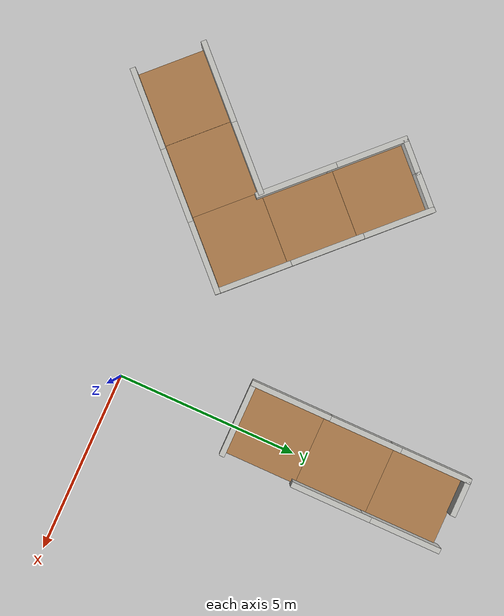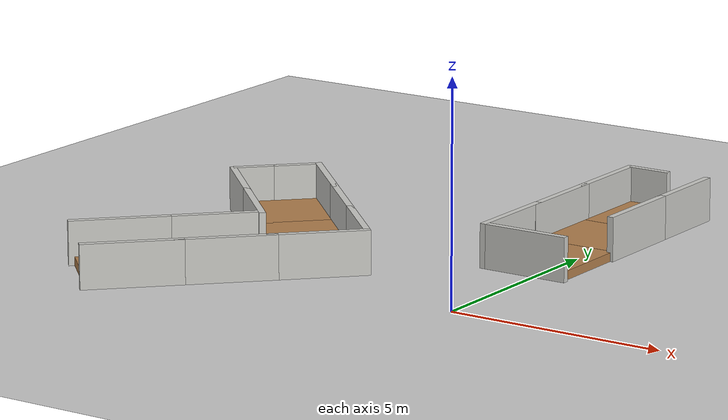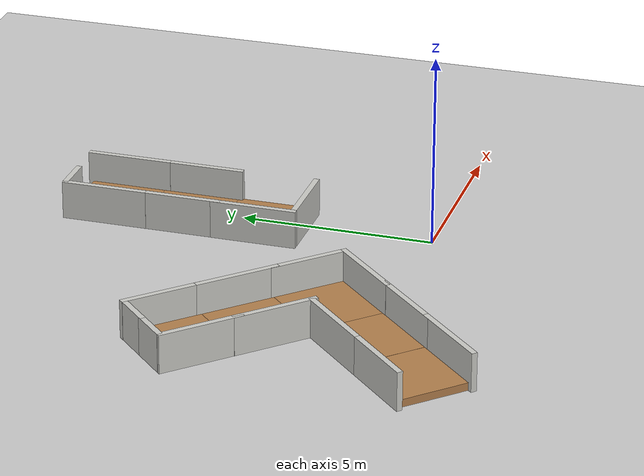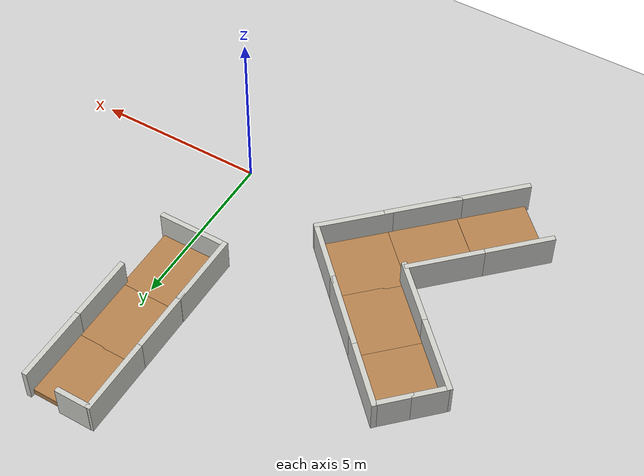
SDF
<sdf version="1.6">
 <world name="default">
  <model name="ground_plane">
   <static>1</static>
   <link name="link">
    <collision name="collision">
     <geometry><plane><normal>0 0 1</normal><size>100 100</size></plane></geometry>
     <surface><friction><ode><mu>100</mu><mu2>50</mu2></ode></friction></surface>
    </collision>
    <visual name="visual">
     <cast_shadows>0</cast_shadows>
     <geometry><plane><normal>0 0 1</normal><size>100 100</size></plane></geometry>
     <material>
      <script><uri>file://media/materials/scripts/gazebo.material</uri><name>Gazebo/Grey</name></script>
     </material>
    </visual>
   </link>
  </model>
  <model name="pg_maze_straight_5">
   <pose>-7.36012 -1.48286 0 0 -0 0.785398</pose>
   <link name="Wall_0">
    <collision name="Wall_0_Collision">
     <geometry><box><size>2.01 2 0.2</size></box></geometry>
     <pose>0 0 0.1 0 -0 0</pose>
    </collision>
    <visual name="Wall_0_Visual">
     <pose>0 0 0.1 0 -0 0</pose>
     <geometry><box><size>2.01 2 0.2</size></box></geometry>
     <material>
      <script><uri>file://media/materials/scripts/gazebo.material</uri><name>Gazebo/Wood</name></script>
      <ambient>1 1 1 1</ambient>
     </material>
     <meta><layer>0</layer></meta>
    </visual>
    <pose>0.003 -0.001 0 0 -0 0</pose>
   </link>
   <link name="Wall_2">
    <collision name="Wall_2_Collision">
     <geometry><box><size>2.25 0.15 1</size></box></geometry>
     <pose>0 0 0.5 0 -0 0</pose>
    </collision>
    <visual name="Wall_2_Visual">
     <pose>0 0 0.5 0 -0 0</pose>
     <geometry><box><size>2.25 0.15 1</size></box></geometry>
     <material>
      <script><uri>file://media/materials/scripts/gazebo.material</uri><name>Gazebo/CeilingTiled</name></script>
      <ambient>0.996078 0.47451 0.0196078 1</ambient>
     </material>
     <meta><layer>0</layer></meta>
    </visual>
    <pose>-0.005 0.985 0 0 -0 0</pose>
   </link>
   <link name="Wall_4">
    <collision name="Wall_4_Collision">
     <geometry><box><size>2.25 0.15 1</size></box></geometry>
     <pose>0 0 0.5 0 -0 0</pose>
    </collision>
    <visual name="Wall_4_Visual">
     <pose>0 0 0.5 0 -0 0</pose>
     <geometry><box><size>2.25 0.15 1</size></box></geometry>
     <material>
      <script><uri>file://media/materials/scripts/gazebo.material</uri><name>Gazebo/CeilingTiled</name></script>
      <ambient>0.996078 0.47451 0.0196078 1</ambient>
     </material>
     <meta><layer>0</layer></meta>
    </visual>
    <pose>0.005 -0.985 0 0 -0 0</pose>
   </link>
   <static>1</static>
  </model>
  <model name="pg_maze_straight_5_clone">
   <pose>-5.93722 -0.059853 0 0 -0 0.785398</pose>
   <link name="Wall_0">
    <collision name="Wall_0_Collision">
     <geometry><box><size>2.01 2 0.2</size></box></geometry>
     <pose>0 0 0.1 0 -0 0</pose>
    </collision>
    <visual name="Wall_0_Visual">
     <pose>0 0 0.1 0 -0 0</pose>
     <geometry><box><size>2.01 2 0.2</size></box></geometry>
     <material>
      <script><uri>file://media/materials/scripts/gazebo.material</uri><name>Gazebo/Wood</name></script>
      <ambient>1 1 1 1</ambient>
     </material>
     <meta><layer>0</layer></meta>
    </visual>
    <pose>0.003 -0.001 0 0 -0 0</pose>
   </link>
   <link name="Wall_2">
    <collision name="Wall_2_Collision">
     <geometry><box><size>2.25 0.15 1</size></box></geometry>
     <pose>0 0 0.5 0 -0 0</pose>
    </collision>
    <visual name="Wall_2_Visual">
     <pose>0 0 0.5 0 -0 0</pose>
     <geometry><box><size>2.25 0.15 1</size></box></geometry>
     <material>
      <script><uri>file://media/materials/scripts/gazebo.material</uri><name>Gazebo/CeilingTiled</name></script>
      <ambient>0.996078 0.47451 0.0196078 1</ambient>
     </material>
     <meta><layer>0</layer></meta>
    </visual>
    <pose>-0.005 0.985 0 0 -0 0</pose>
   </link>
   <link name="Wall_4">
    <collision name="Wall_4_Collision">
     <geometry><box><size>2.25 0.15 1</size></box></geometry>
     <pose>0 0 0.5 0 -0 0</pose>
    </collision>
    <visual name="Wall_4_Visual">
     <pose>0 0 0.5 0 -0 0</pose>
     <geometry><box><size>2.25 0.15 1</size></box></geometry>
     <material>
      <script><uri>file://media/materials/scripts/gazebo.material</uri><name>Gazebo/CeilingTiled</name></script>
      <ambient>0.996078 0.47451 0.0196078 1</ambient>
     </material>
     <meta><layer>0</layer></meta>
    </visual>
    <pose>0.005 -0.985 0 0 -0 0</pose>
   </link>
   <static>1</static>
  </model>
  <model name="pg_maze_corner_0_clone_1">
   <pose>-4.52453 1.36756 0 0 0 -2.35619</pose>
   <link name="Wall_0">
    <collision name="Wall_0_Collision">
     <geometry><box><size>2.01 2 0.2</size></box></geometry>
     <pose>0 0 0.1 0 -0 0</pose>
    </collision>
    <visual name="Wall_0_Visual">
     <pose>0 0 0.1 0 -0 0</pose>
     <geometry><box><size>2.01 2 0.2</size></box></geometry>
     <material>
      <script><uri>file://media/materials/scripts/gazebo.material</uri><name>Gazebo/Wood</name></script>
      <ambient>1 1 1 1</ambient>
     </material>
     <meta><layer>0</layer></meta>
    </visual>
    <pose>0.009575 0.005575 0 0 -0 0</pose>
   </link>
   <link name="Wall_2">
    <collision name="Wall_2_Collision">
     <geometry><box><size>2.25 0.15 1</size></box></geometry>
     <pose>0 0 0.5 0 -0 0</pose>
    </collision>
    <visual name="Wall_2_Visual">
     <pose>0 0 0.5 0 -0 0</pose>
     <geometry><box><size>2.25 0.15 1</size></box></geometry>
     <material>
      <script><uri>file://media/materials/scripts/gazebo.material</uri><name>Gazebo/CeilingTiled</name></script>
      <ambient>0.996078 0.47451 0.0196078 1</ambient>
     </material>
     <meta><layer>0</layer></meta>
    </visual>
    <pose>0.001575 0.991575 0 0 -0 0</pose>
   </link>
   <link name="Wall_4">
    <collision name="Wall_4_Collision">
     <geometry><box><size>2 0.15 1</size></box></geometry>
     <pose>0 0 0.5 0 -0 0</pose>
    </collision>
    <visual name="Wall_4_Visual">
     <pose>0 0 0.5 0 -0 0</pose>
     <geometry><box><size>2 0.15 1</size></box></geometry>
     <material>
      <script><uri>file://media/materials/scripts/gazebo.material</uri><name>Gazebo/CeilingTiled</name></script>
      <ambient>0.996078 0.47451 0.0196078 1</ambient>
     </material>
     <meta><layer>0</layer></meta>
    </visual>
    <pose>-1.05157 -0.066575 0 0 -0 1.5708</pose>
   </link>
   <static>1</static>
  </model>
  <model name="pg_maze_straight_5_clone_clone">
   <pose>-5.85769 2.79565 0 0 0 -0.785398</pose>
   <link name="Wall_0">
    <collision name="Wall_0_Collision">
     <geometry><box><size>2.01 2 0.2</size></box></geometry>
     <pose>0 0 0.1 0 -0 0</pose>
    </collision>
    <visual name="Wall_0_Visual">
     <pose>0 0 0.1 0 -0 0</pose>
     <geometry><box><size>2.01 2 0.2</size></box></geometry>
     <material>
      <script><uri>file://media/materials/scripts/gazebo.material</uri><name>Gazebo/Wood</name></script>
      <ambient>1 1 1 1</ambient>
     </material>
     <meta><layer>0</layer></meta>
    </visual>
    <pose>0.003 -0.001 0 0 -0 0</pose>
   </link>
   <link name="Wall_2">
    <collision name="Wall_2_Collision">
     <geometry><box><size>2.25 0.15 1</size></box></geometry>
     <pose>0 0 0.5 0 -0 0</pose>
    </collision>
    <visual name="Wall_2_Visual">
     <pose>0 0 0.5 0 -0 0</pose>
     <geometry><box><size>2.25 0.15 1</size></box></geometry>
     <material>
      <script><uri>file://media/materials/scripts/gazebo.material</uri><name>Gazebo/CeilingTiled</name></script>
      <ambient>0.996078 0.47451 0.0196078 1</ambient>
     </material>
     <meta><layer>0</layer></meta>
    </visual>
    <pose>-0.005 0.985 0 0 -0 0</pose>
   </link>
   <link name="Wall_4">
    <collision name="Wall_4_Collision">
     <geometry><box><size>2.25 0.15 1</size></box></geometry>
     <pose>0 0 0.5 0 -0 0</pose>
    </collision>
    <visual name="Wall_4_Visual">
     <pose>0 0 0.5 0 -0 0</pose>
     <geometry><box><size>2.25 0.15 1</size></box></geometry>
     <material>
      <script><uri>file://media/materials/scripts/gazebo.material</uri><name>Gazebo/CeilingTiled</name></script>
      <ambient>0.996078 0.47451 0.0196078 1</ambient>
     </material>
     <meta><layer>0</layer></meta>
    </visual>
    <pose>0.005 -0.985 0 0 -0 0</pose>
   </link>
   <static>1</static>
  </model>
  <model name="pg_maze_straight_5_clone_clone_clone">
   <pose>-7.2449 4.18662 0 0 0 -0.785398</pose>
   <link name="Wall_0">
    <collision name="Wall_0_Collision">
     <geometry><box><size>2.01 2 0.2</size></box></geometry>
     <pose>0 0 0.1 0 -0 0</pose>
    </collision>
    <visual name="Wall_0_Visual">
     <pose>0 0 0.1 0 -0 0</pose>
     <geometry><box><size>2.01 2 0.2</size></box></geometry>
     <material>
      <script><uri>file://media/materials/scripts/gazebo.material</uri><name>Gazebo/Wood</name></script>
      <ambient>1 1 1 1</ambient>
     </material>
     <meta><layer>0</layer></meta>
    </visual>
    <pose>0.003 -0.001 0 0 -0 0</pose>
   </link>
   <link name="Wall_2">
    <collision name="Wall_2_Collision">
     <geometry><box><size>2.25 0.15 1</size></box></geometry>
     <pose>0 0 0.5 0 -0 0</pose>
    </collision>
    <visual name="Wall_2_Visual">
     <pose>0 0 0.5 0 -0 0</pose>
     <geometry><box><size>2.25 0.15 1</size></box></geometry>
     <material>
      <script><uri>file://media/materials/scripts/gazebo.material</uri><name>Gazebo/CeilingTiled</name></script>
      <ambient>0.996078 0.47451 0.0196078 1</ambient>
     </material>
     <meta><layer>0</layer></meta>
    </visual>
    <pose>-0.005 0.985 0 0 -0 0</pose>
   </link>
   <link name="Wall_4">
    <collision name="Wall_4_Collision">
     <geometry><box><size>2.25 0.15 1</size></box></geometry>
     <pose>0 0 0.5 0 -0 0</pose>
    </collision>
    <visual name="Wall_4_Visual">
     <pose>0 0 0.5 0 -0 0</pose>
     <geometry><box><size>2.25 0.15 1</size></box></geometry>
     <material>
      <script><uri>file://media/materials/scripts/gazebo.material</uri><name>Gazebo/CeilingTiled</name></script>
      <ambient>0.996078 0.47451 0.0196078 1</ambient>
     </material>
     <meta><layer>0</layer></meta>
    </visual>
    <pose>0.005 -0.985 0 0 -0 0</pose>
   </link>
   <static>1</static>
  </model>
  <model name="pg_maze_obstacle_3">
   <pose>-7.67939 5.23676 0 0 -0 0.785398</pose>
   <link name="Wall_2">
    <collision name="Wall_2_Collision">
     <geometry><box><size>1 0.15 1</size></box></geometry>
     <pose>0 0 0.5 0 -0 0</pose>
    </collision>
    <visual name="Wall_2_Visual">
     <pose>0 0 0.5 0 -0 0</pose>
     <geometry><box><size>1 0.15 1</size></box></geometry>
     <material>
      <script><uri>file://media/materials/scripts/gazebo.material</uri><name>Gazebo/CeilingTiled</name></script>
      <ambient>0.996078 0.47451 0.0196078 1</ambient>
     </material>
     <meta><layer>0</layer></meta>
    </visual>
   </link>
   <static>1</static>
  </model>
  <model name="pg_maze_obstacle_3_clone">
   <pose>-8.32557 4.59098 0 0 -0 0.785398</pose>
   <link name="Wall_2">
    <collision name="Wall_2_Collision">
     <geometry><box><size>1 0.15 1</size></box></geometry>
     <pose>0 0 0.5 0 -0 0</pose>
    </collision>
    <visual name="Wall_2_Visual">
     <pose>0 0 0.5 0 -0 0</pose>
     <geometry><box><size>1 0.15 1</size></box></geometry>
     <material>
      <script><uri>file://media/materials/scripts/gazebo.material</uri><name>Gazebo/CeilingTiled</name></script>
      <ambient>0.996078 0.47451 0.0196078 1</ambient>
     </material>
     <meta><layer>0</layer></meta>
    </visual>
   </link>
   <static>1</static>
  </model>
  <model name="pg_maze_corner_0_clone_1_clone">
   <pose>-0.301148 4.32906 0 0 -0 1.5708</pose>
   <link name="Wall_0">
    <collision name="Wall_0_Collision">
     <geometry><box><size>2.01 2 0.2</size></box></geometry>
     <pose>0 0 0.1 0 -0 0</pose>
    </collision>
    <visual name="Wall_0_Visual">
     <pose>0 0 0.1 0 -0 0</pose>
     <geometry><box><size>2.01 2 0.2</size></box></geometry>
     <material>
      <script><uri>file://media/materials/scripts/gazebo.material</uri><name>Gazebo/Wood</name></script>
      <ambient>1 1 1 1</ambient>
     </material>
     <meta><layer>0</layer></meta>
    </visual>
    <pose>0.009575 0.005575 0 0 -0 0</pose>
   </link>
   <link name="Wall_2">
    <collision name="Wall_2_Collision">
     <geometry><box><size>2.25 0.15 1</size></box></geometry>
     <pose>0 0 0.5 0 -0 0</pose>
    </collision>
    <visual name="Wall_2_Visual">
     <pose>0 0 0.5 0 -0 0</pose>
     <geometry><box><size>2.25 0.15 1</size></box></geometry>
     <material>
      <script><uri>file://media/materials/scripts/gazebo.material</uri><name>Gazebo/CeilingTiled</name></script>
      <ambient>0.996078 0.47451 0.0196078 1</ambient>
     </material>
     <meta><layer>0</layer></meta>
    </visual>
    <pose>0.001575 0.991575 0 0 -0 0</pose>
   </link>
   <link name="Wall_4">
    <collision name="Wall_4_Collision">
     <geometry><box><size>2 0.15 1</size></box></geometry>
     <pose>0 0 0.5 0 -0 0</pose>
    </collision>
    <visual name="Wall_4_Visual">
     <pose>0 0 0.5 0 -0 0</pose>
     <geometry><box><size>2 0.15 1</size></box></geometry>
     <material>
      <script><uri>file://media/materials/scripts/gazebo.material</uri><name>Gazebo/CeilingTiled</name></script>
      <ambient>0.996078 0.47451 0.0196078 1</ambient>
     </material>
     <meta><layer>0</layer></meta>
    </visual>
    <pose>-1.05157 -0.066575 0 0 -0 1.5708</pose>
   </link>
   <static>1</static>
  </model>
  <model name="pg_maze_straight_5_clone_clone_clone_0">
   <pose>-0.30241 6.34792 0 0 0 -1.5708</pose>
   <link name="Wall_0">
    <collision name="Wall_0_Collision">
     <geometry><box><size>2.01 2 0.2</size></box></geometry>
     <pose>0 0 0.1 0 -0 0</pose>
    </collision>
    <visual name="Wall_0_Visual">
     <pose>0 0 0.1 0 -0 0</pose>
     <geometry><box><size>2.01 2 0.2</size></box></geometry>
     <material>
      <script><uri>file://media/materials/scripts/gazebo.material</uri><name>Gazebo/Wood</name></script>
      <ambient>1 1 1 1</ambient>
     </material>
     <meta><layer>0</layer></meta>
    </visual>
    <pose>0.003 -0.001 0 0 -0 0</pose>
   </link>
   <link name="Wall_2">
    <collision name="Wall_2_Collision">
     <geometry><box><size>2.25 0.15 1</size></box></geometry>
     <pose>0 0 0.5 0 -0 0</pose>
    </collision>
    <visual name="Wall_2_Visual">
     <pose>0 0 0.5 0 -0 0</pose>
     <geometry><box><size>2.25 0.15 1</size></box></geometry>
     <material>
      <script><uri>file://media/materials/scripts/gazebo.material</uri><name>Gazebo/CeilingTiled</name></script>
      <ambient>0.996078 0.47451 0.0196078 1</ambient>
     </material>
     <meta><layer>0</layer></meta>
    </visual>
    <pose>-0.005 0.985 0 0 -0 0</pose>
   </link>
   <link name="Wall_4">
    <collision name="Wall_4_Collision">
     <geometry><box><size>2.25 0.15 1</size></box></geometry>
     <pose>0 0 0.5 0 -0 0</pose>
    </collision>
    <visual name="Wall_4_Visual">
     <pose>0 0 0.5 0 -0 0</pose>
     <geometry><box><size>2.25 0.15 1</size></box></geometry>
     <material>
      <script><uri>file://media/materials/scripts/gazebo.material</uri><name>Gazebo/CeilingTiled</name></script>
      <ambient>0.996078 0.47451 0.0196078 1</ambient>
     </material>
     <meta><layer>0</layer></meta>
    </visual>
    <pose>0.005 -0.985 0 0 -0 0</pose>
   </link>
   <static>1</static>
  </model>
  <model name="pg_maze_straight_5_clone_clone_clone_0_clone">
   <pose>-0.304514 8.32497 0 0 0 -1.5708</pose>
   <link name="Wall_0">
    <collision name="Wall_0_Collision">
     <geometry><box><size>2.01 2 0.2</size></box></geometry>
     <pose>0 0 0.1 0 -0 0</pose>
    </collision>
    <visual name="Wall_0_Visual">
     <pose>0 0 0.1 0 -0 0</pose>
     <geometry><box><size>2.01 2 0.2</size></box></geometry>
     <material>
      <script><uri>file://media/materials/scripts/gazebo.material</uri><name>Gazebo/Wood</name></script>
      <ambient>1 1 1 1</ambient>
     </material>
     <meta><layer>0</layer></meta>
    </visual>
    <pose>0.003 -0.001 0 0 -0 0</pose>
   </link>
   <link name="Wall_2">
    <collision name="Wall_2_Collision">
     <geometry><box><size>2.25 0.15 1</size></box></geometry>
     <pose>0 0 0.5 0 -0 0</pose>
    </collision>
    <visual name="Wall_2_Visual">
     <pose>0 0 0.5 0 -0 0</pose>
     <geometry><box><size>2.25 0.15 1</size></box></geometry>
     <material>
      <script><uri>file://media/materials/scripts/gazebo.material</uri><name>Gazebo/CeilingTiled</name></script>
      <ambient>0.996078 0.47451 0.0196078 1</ambient>
     </material>
     <meta><layer>0</layer></meta>
    </visual>
    <pose>-0.005 0.985 0 0 -0 0</pose>
   </link>
   <link name="Wall_4">
    <collision name="Wall_4_Collision">
     <geometry><box><size>2.25 0.15 1</size></box></geometry>
     <pose>0 0 0.5 0 -0 0</pose>
    </collision>
    <visual name="Wall_4_Visual">
     <pose>0 0 0.5 0 -0 0</pose>
     <geometry><box><size>2.25 0.15 1</size></box></geometry>
     <material>
      <script><uri>file://media/materials/scripts/gazebo.material</uri><name>Gazebo/CeilingTiled</name></script>
      <ambient>0.996078 0.47451 0.0196078 1</ambient>
     </material>
     <meta><layer>0</layer></meta>
    </visual>
    <pose>0.005 -0.985 0 0 -0 0</pose>
   </link>
   <static>1</static>
  </model>
  <model name="pg_maze_obstacle_3_clone_0_clone">
   <pose>-0.781962 9.37881 0 0 -0 0</pose>
   <link name="Wall_2">
    <collision name="Wall_2_Collision">
     <geometry><box><size>1 0.15 1</size></box></geometry>
     <pose>0 0 0.5 0 -0 0</pose>
    </collision>
    <visual name="Wall_2_Visual">
     <pose>0 0 0.5 0 -0 0</pose>
     <geometry><box><size>1 0.15 1</size></box></geometry>
     <material>
      <script><uri>file://media/materials/scripts/gazebo.material</uri><name>Gazebo/CeilingTiled</name></script>
      <ambient>0.996078 0.47451 0.0196078 1</ambient>
     </material>
     <meta><layer>0</layer></meta>
    </visual>
   </link>
   <static>1</static>
  </model>
 </world>
</sdf>
